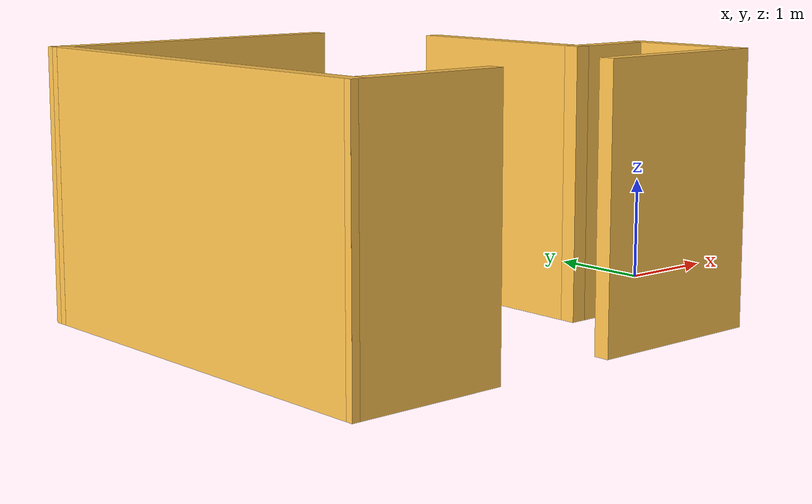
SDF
<?xml version='1.0'?>
<sdf version='1.7'>
  <model name='Test_building02'>
    <pose>-2.73597 0.016727 0 0 -0 0</pose>
    <link name='Wall_12'>
      <collision name='Wall_12_Collision'>
        <geometry>
          <box>
            <size>4.20001 0.15 2.5</size>
          </box>
        </geometry>
        <pose>0 0 1.25 0 -0 0</pose>
      </collision>
      <visual name='Wall_12_Visual'>
        <pose>0 0 1.25 0 -0 0</pose>
        <geometry>
          <box>
            <size>4.20001 0.15 2.5</size>
          </box>
        </geometry>
        <material>
          <script>
            <uri>file://media/materials/scripts/gazebo.material</uri>
            <name>Gazebo/Grey</name>
          </script>
          <ambient>1 0.764706 0.305882 1</ambient>
        </material>
        <meta>
          <layer>0</layer>
        </meta>
      </visual>
      <pose>-2.65578 -0 0 0 -0 1.57326</pose>
    </link>
    <link name='Wall_14'>
      <collision name='Wall_14_Collision'>
        <geometry>
          <box>
            <size>1.5 0.15 2.5</size>
          </box>
        </geometry>
        <pose>0 0 1.25 0 -0 0</pose>
      </collision>
      <visual name='Wall_14_Visual'>
        <pose>0 0 1.25 0 -0 0</pose>
        <geometry>
          <box>
            <size>1.5 0.15 2.5</size>
          </box>
        </geometry>
        <material>
          <script>
            <uri>file://media/materials/scripts/gazebo.material</uri>
            <name>Gazebo/Grey</name>
          </script>
          <ambient>1 0.764706 0.305882 1</ambient>
        </material>
        <meta>
          <layer>0</layer>
        </meta>
      </visual>
      <pose>-1.97578 -2.025 0 0 -0 0</pose>
    </link>
    <link name='Wall_18'>
      <collision name='Wall_18_Collision'>
        <geometry>
          <box>
            <size>1.75 0.15 2.5</size>
          </box>
        </geometry>
        <pose>0 0 1.25 0 -0 0</pose>
      </collision>
      <visual name='Wall_18_Visual'>
        <pose>0 0 1.25 0 -0 0</pose>
        <geometry>
          <box>
            <size>1.75 0.15 2.5</size>
          </box>
        </geometry>
        <material>
          <script>
            <uri>file://media/materials/scripts/gazebo.material</uri>
            <name>Gazebo/Grey</name>
          </script>
          <ambient>1 0.764706 0.305882 1</ambient>
        </material>
        <meta>
          <layer>0</layer>
        </meta>
      </visual>
      <pose>0.889218 -2.025 0 0 -0 3.14159</pose>
    </link>
    <link name='Wall_24'>
      <collision name='Wall_24_Collision'>
        <geometry>
          <box>
            <size>3 0.15 2.5</size>
          </box>
        </geometry>
        <pose>0 0 1.25 0 -0 0</pose>
      </collision>
      <visual name='Wall_24_Visual'>
        <pose>0 0 1.25 0 -0 0</pose>
        <geometry>
          <box>
            <size>3 0.15 2.5</size>
          </box>
        </geometry>
        <material>
          <script>
            <uri>file://media/materials/scripts/gazebo.material</uri>
            <name>Gazebo/Grey</name>
          </script>
          <ambient>1 0.764706 0.305882 1</ambient>
        </material>
        <meta>
          <layer>0</layer>
        </meta>
      </visual>
      <pose>-1.23578 2.025 0 0 -0 3.14159</pose>
    </link>
    <link name='Wall_26'>
      <collision name='Wall_26_Collision'>
        <geometry>
          <box>
            <size>1 0.15 2.5</size>
          </box>
        </geometry>
        <pose>0 0 1.25 0 -0 0</pose>
      </collision>
      <visual name='Wall_26_Visual'>
        <pose>0 0 1.25 0 -0 0</pose>
        <geometry>
          <box>
            <size>1 0.15 2.5</size>
          </box>
        </geometry>
        <material>
          <script>
            <uri>file://media/materials/scripts/gazebo.material</uri>
            <name>Gazebo/Grey</name>
          </script>
          <ambient>1 0.764706 0.305882 1</ambient>
        </material>
        <meta>
          <layer>0</layer>
        </meta>
      </visual>
      <pose>1.26422 -0.925 0 0 -0 3.14159</pose>
    </link>
    <link name='Wall_27'>
      <collision name='Wall_27_Collision'>
        <geometry>
          <box>
            <size>2 0.15 2.5</size>
          </box>
        </geometry>
        <pose>0 0 1.25 0 -0 0</pose>
      </collision>
      <visual name='Wall_27_Visual'>
        <pose>0 0 1.25 0 -0 0</pose>
        <geometry>
          <box>
            <size>2 0.15 2.5</size>
          </box>
        </geometry>
        <material>
          <script>
            <uri>file://media/materials/scripts/gazebo.material</uri>
            <name>Gazebo/Grey</name>
          </script>
          <ambient>1 0.764706 0.305882 1</ambient>
        </material>
        <meta>
          <layer>0</layer>
        </meta>
      </visual>
      <pose>0.839218 -0 0 0 -0 1.5708</pose>
    </link>
    <link name='Wall_9'>
      <collision name='Wall_9_Collision'>
        <geometry>
          <box>
            <size>1.25 0.15 2.5</size>
          </box>
        </geometry>
        <pose>0 0 1.25 0 -0 0</pose>
      </collision>
      <visual name='Wall_9_Visual'>
        <pose>0 0 1.25 0 -0 0</pose>
        <geometry>
          <box>
            <size>1.25 0.15 2.5</size>
          </box>
        </geometry>
        <material>
          <script>
            <uri>file://media/materials/scripts/gazebo.material</uri>
            <name>Gazebo/Grey</name>
          </script>
          <ambient>1 0.764706 0.305882 1</ambient>
        </material>
        <meta>
          <layer>0</layer>
        </meta>
      </visual>
      <pose>1.68922 -1.475 0 0 -0 -1.5708</pose>
    </link>
    <static>1</static>
  </model>
</sdf>
